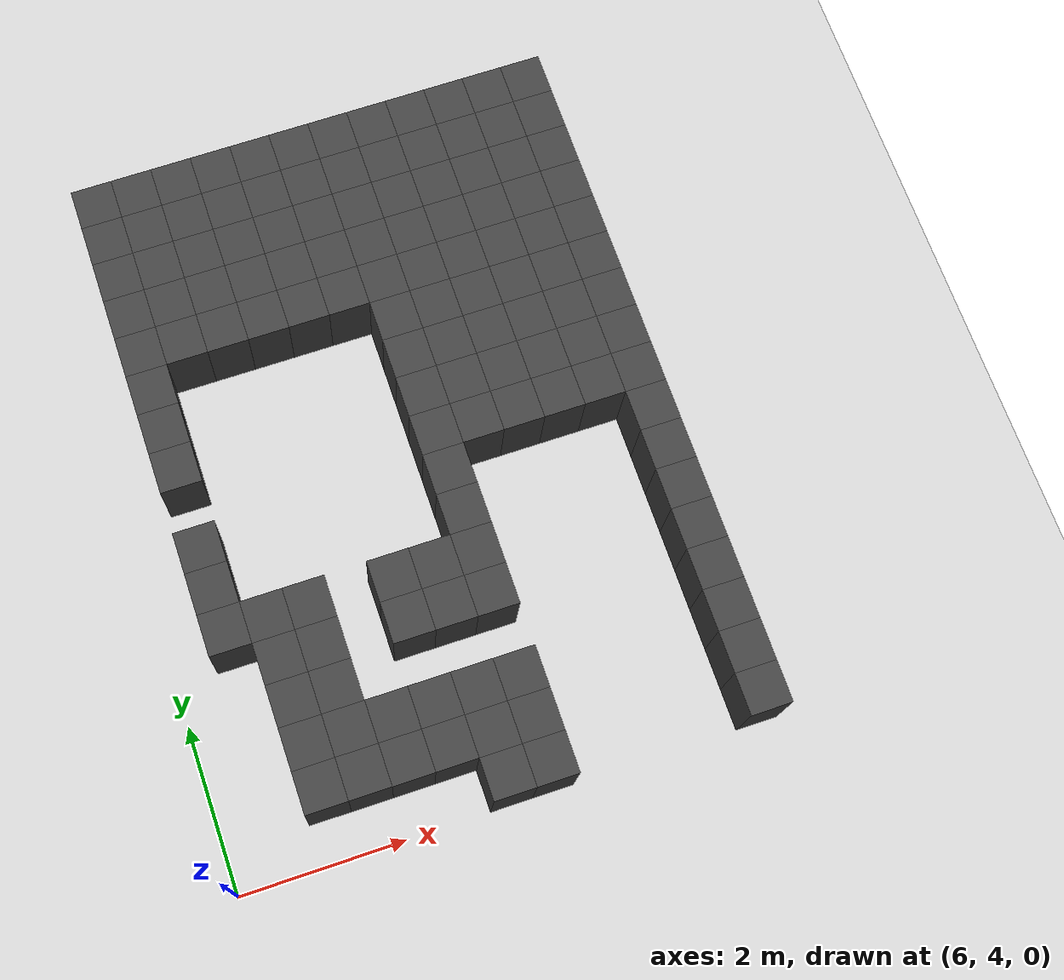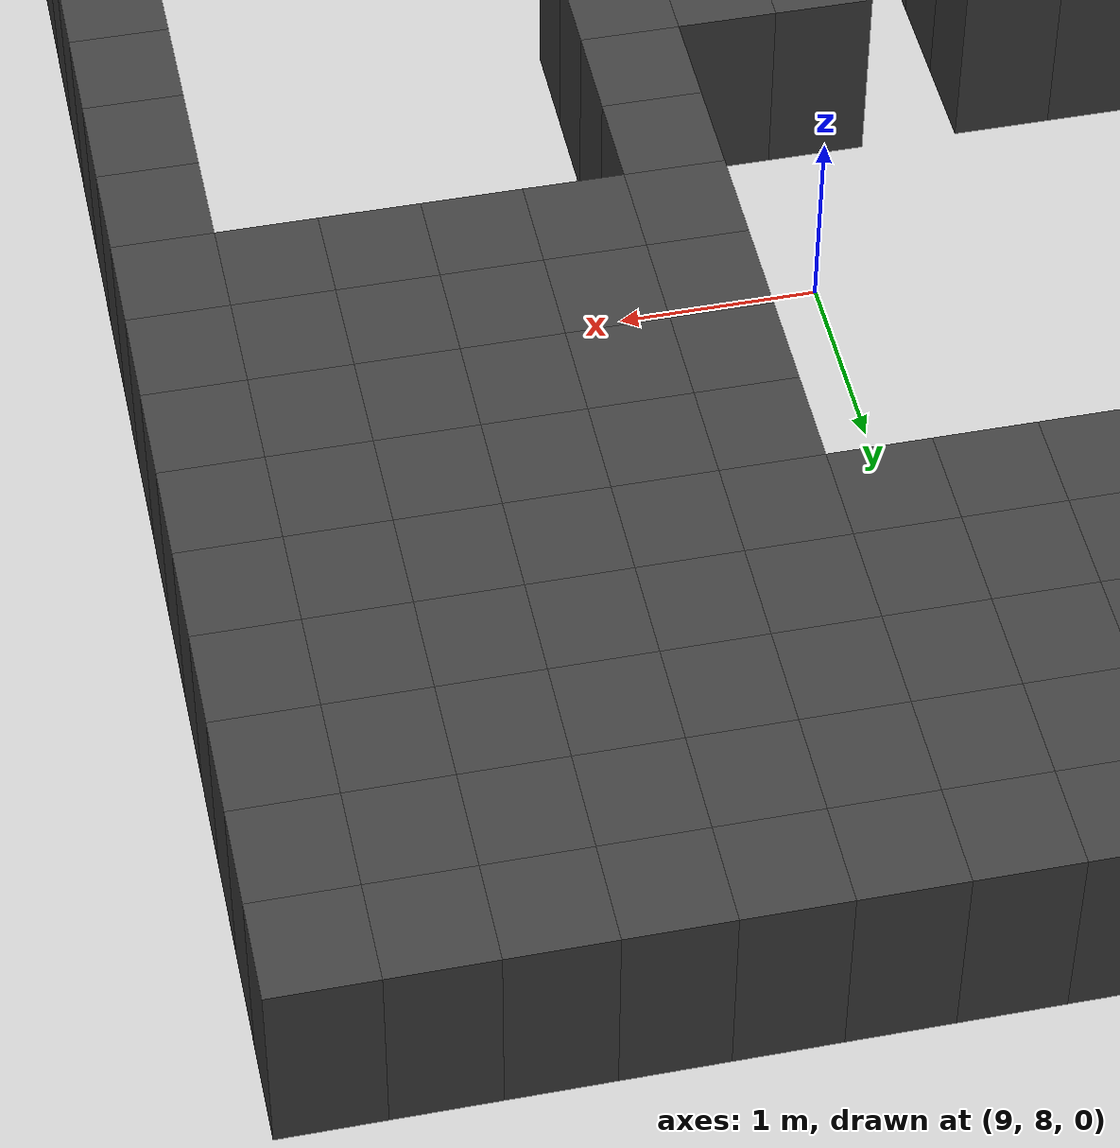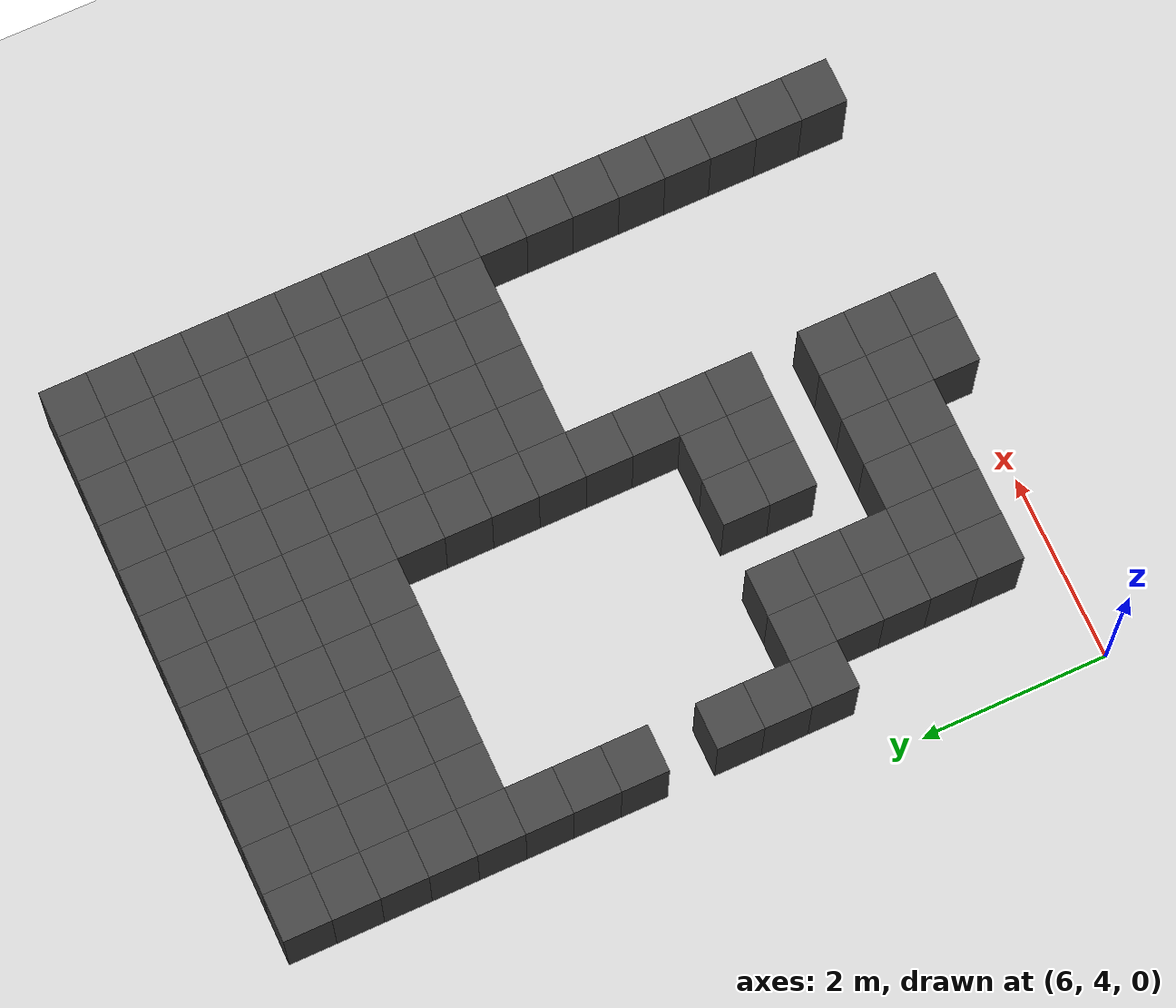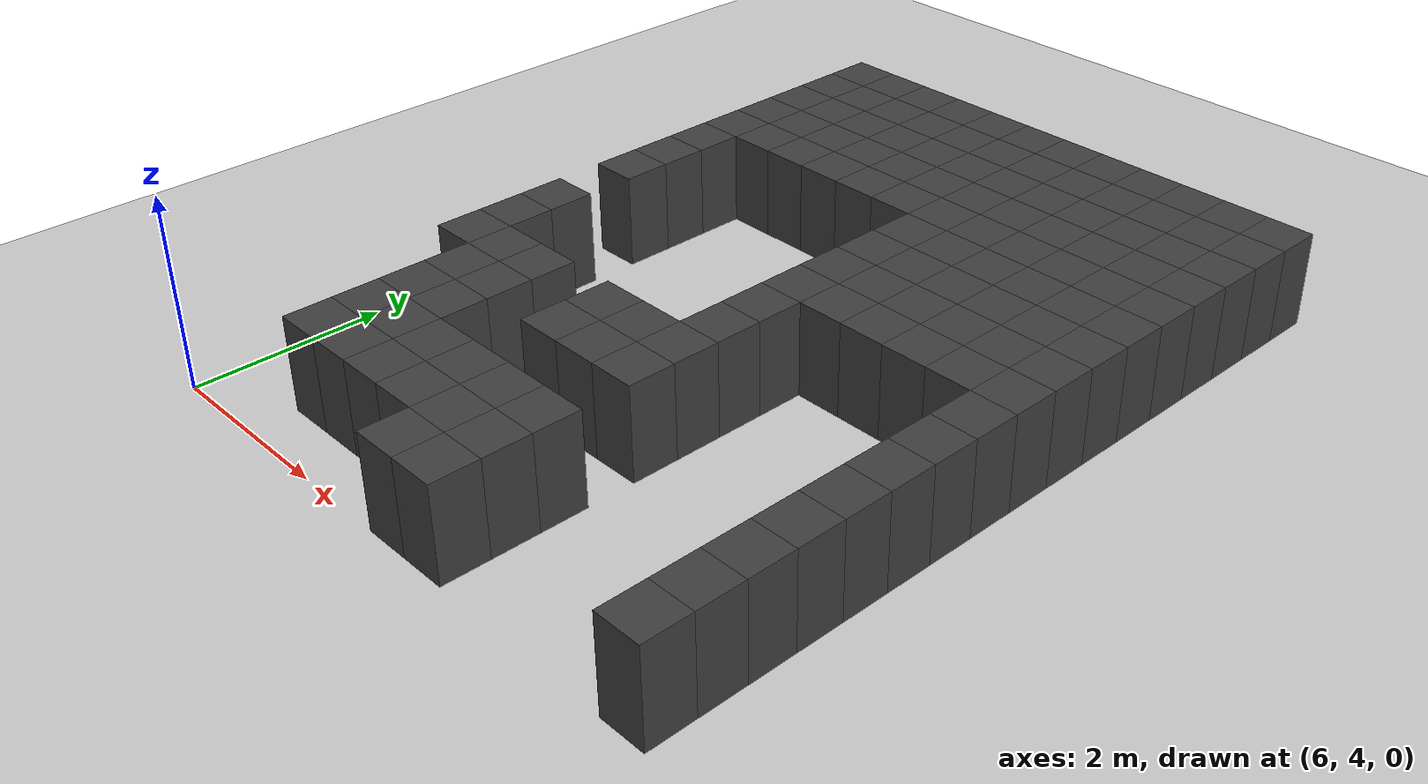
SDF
<sdf version="1.7">
 <world name="map_14190">
  <model name="ground_plane">
   <static>true</static>
   <link name="link">
    <collision name="collision">
     <geometry><plane><normal>0 0 1</normal><size>200 200</size></plane></geometry>
    </collision>
    <visual name="visual">
     <geometry><plane><normal>0 0 1</normal><size>200 200</size></plane></geometry>
     <material><ambient>0.8 0.8 0.8 1</ambient><diffuse>0.8 0.8 0.8 1</diffuse></material>
    </visual>
   </link>
  </model>
  <model name="maze_environment">
   <static>true</static>
   <link name="wall_38">
    <pose>6.750 12.250 0.500 0 0 0</pose>
    <collision name="col"><geometry><box><size>0.5 0.5 1.0</size></box></geometry></collision>
    <visual name="vis">
     <geometry><box><size>0.5 0.5 1.0</size></box></geometry>
     <material><ambient>0.15 0.15 0.15 1</ambient><diffuse>0.25 0.25 0.25 1</diffuse></material>
    </visual>
   </link>
   <link name="wall_39">
    <pose>7.250 12.250 0.500 0 0 0</pose>
    <collision name="col"><geometry><box><size>0.5 0.5 1.0</size></box></geometry></collision>
    <visual name="vis">
     <geometry><box><size>0.5 0.5 1.0</size></box></geometry>
     <material><ambient>0.15 0.15 0.15 1</ambient><diffuse>0.25 0.25 0.25 1</diffuse></material>
    </visual>
   </link>
   <link name="wall_40">
    <pose>7.750 12.250 0.500 0 0 0</pose>
    <collision name="col"><geometry><box><size>0.5 0.5 1.0</size></box></geometry></collision>
    <visual name="vis">
     <geometry><box><size>0.5 0.5 1.0</size></box></geometry>
     <material><ambient>0.15 0.15 0.15 1</ambient><diffuse>0.25 0.25 0.25 1</diffuse></material>
    </visual>
   </link>
   <link name="wall_41">
    <pose>8.250 12.250 0.500 0 0 0</pose>
    <collision name="col"><geometry><box><size>0.5 0.5 1.0</size></box></geometry></collision>
    <visual name="vis">
     <geometry><box><size>0.5 0.5 1.0</size></box></geometry>
     <material><ambient>0.15 0.15 0.15 1</ambient><diffuse>0.25 0.25 0.25 1</diffuse></material>
    </visual>
   </link>
   <link name="wall_42">
    <pose>8.750 12.250 0.500 0 0 0</pose>
    <collision name="col"><geometry><box><size>0.5 0.5 1.0</size></box></geometry></collision>
    <visual name="vis">
     <geometry><box><size>0.5 0.5 1.0</size></box></geometry>
     <material><ambient>0.15 0.15 0.15 1</ambient><diffuse>0.25 0.25 0.25 1</diffuse></material>
    </visual>
   </link>
   <link name="wall_43">
    <pose>9.250 12.250 0.500 0 0 0</pose>
    <collision name="col"><geometry><box><size>0.5 0.5 1.0</size></box></geometry></collision>
    <visual name="vis">
     <geometry><box><size>0.5 0.5 1.0</size></box></geometry>
     <material><ambient>0.15 0.15 0.15 1</ambient><diffuse>0.25 0.25 0.25 1</diffuse></material>
    </visual>
   </link>
   <link name="wall_44">
    <pose>9.750 12.250 0.500 0 0 0</pose>
    <collision name="col"><geometry><box><size>0.5 0.5 1.0</size></box></geometry></collision>
    <visual name="vis">
     <geometry><box><size>0.5 0.5 1.0</size></box></geometry>
     <material><ambient>0.15 0.15 0.15 1</ambient><diffuse>0.25 0.25 0.25 1</diffuse></material>
    </visual>
   </link>
   <link name="wall_45">
    <pose>10.250 12.250 0.500 0 0 0</pose>
    <collision name="col"><geometry><box><size>0.5 0.5 1.0</size></box></geometry></collision>
    <visual name="vis">
     <geometry><box><size>0.5 0.5 1.0</size></box></geometry>
     <material><ambient>0.15 0.15 0.15 1</ambient><diffuse>0.25 0.25 0.25 1</diffuse></material>
    </visual>
   </link>
   <link name="wall_46">
    <pose>10.750 12.250 0.500 0 0 0</pose>
    <collision name="col"><geometry><box><size>0.5 0.5 1.0</size></box></geometry></collision>
    <visual name="vis">
     <geometry><box><size>0.5 0.5 1.0</size></box></geometry>
     <material><ambient>0.15 0.15 0.15 1</ambient><diffuse>0.25 0.25 0.25 1</diffuse></material>
    </visual>
   </link>
   <link name="wall_47">
    <pose>11.250 12.250 0.500 0 0 0</pose>
    <collision name="col"><geometry><box><size>0.5 0.5 1.0</size></box></geometry></collision>
    <visual name="vis">
     <geometry><box><size>0.5 0.5 1.0</size></box></geometry>
     <material><ambient>0.15 0.15 0.15 1</ambient><diffuse>0.25 0.25 0.25 1</diffuse></material>
    </visual>
   </link>
   <link name="wall_48">
    <pose>11.750 12.250 0.500 0 0 0</pose>
    <collision name="col"><geometry><box><size>0.5 0.5 1.0</size></box></geometry></collision>
    <visual name="vis">
     <geometry><box><size>0.5 0.5 1.0</size></box></geometry>
     <material><ambient>0.15 0.15 0.15 1</ambient><diffuse>0.25 0.25 0.25 1</diffuse></material>
    </visual>
   </link>
   <link name="wall_49">
    <pose>12.250 12.250 0.500 0 0 0</pose>
    <collision name="col"><geometry><box><size>0.5 0.5 1.0</size></box></geometry></collision>
    <visual name="vis">
     <geometry><box><size>0.5 0.5 1.0</size></box></geometry>
     <material><ambient>0.15 0.15 0.15 1</ambient><diffuse>0.25 0.25 0.25 1</diffuse></material>
    </visual>
   </link>
   <link name="wall_85">
    <pose>6.750 11.750 0.500 0 0 0</pose>
    <collision name="col"><geometry><box><size>0.5 0.5 1.0</size></box></geometry></collision>
    <visual name="vis">
     <geometry><box><size>0.5 0.5 1.0</size></box></geometry>
     <material><ambient>0.15 0.15 0.15 1</ambient><diffuse>0.25 0.25 0.25 1</diffuse></material>
    </visual>
   </link>
   <link name="wall_86">
    <pose>7.250 11.750 0.500 0 0 0</pose>
    <collision name="col"><geometry><box><size>0.5 0.5 1.0</size></box></geometry></collision>
    <visual name="vis">
     <geometry><box><size>0.5 0.5 1.0</size></box></geometry>
     <material><ambient>0.15 0.15 0.15 1</ambient><diffuse>0.25 0.25 0.25 1</diffuse></material>
    </visual>
   </link>
   <link name="wall_87">
    <pose>7.750 11.750 0.500 0 0 0</pose>
    <collision name="col"><geometry><box><size>0.5 0.5 1.0</size></box></geometry></collision>
    <visual name="vis">
     <geometry><box><size>0.5 0.5 1.0</size></box></geometry>
     <material><ambient>0.15 0.15 0.15 1</ambient><diffuse>0.25 0.25 0.25 1</diffuse></material>
    </visual>
   </link>
   <link name="wall_88">
    <pose>8.250 11.750 0.500 0 0 0</pose>
    <collision name="col"><geometry><box><size>0.5 0.5 1.0</size></box></geometry></collision>
    <visual name="vis">
     <geometry><box><size>0.5 0.5 1.0</size></box></geometry>
     <material><ambient>0.15 0.15 0.15 1</ambient><diffuse>0.25 0.25 0.25 1</diffuse></material>
    </visual>
   </link>
   <link name="wall_89">
    <pose>8.750 11.750 0.500 0 0 0</pose>
    <collision name="col"><geometry><box><size>0.5 0.5 1.0</size></box></geometry></collision>
    <visual name="vis">
     <geometry><box><size>0.5 0.5 1.0</size></box></geometry>
     <material><ambient>0.15 0.15 0.15 1</ambient><diffuse>0.25 0.25 0.25 1</diffuse></material>
    </visual>
   </link>
   <link name="wall_90">
    <pose>9.250 11.750 0.500 0 0 0</pose>
    <collision name="col"><geometry><box><size>0.5 0.5 1.0</size></box></geometry></collision>
    <visual name="vis">
     <geometry><box><size>0.5 0.5 1.0</size></box></geometry>
     <material><ambient>0.15 0.15 0.15 1</ambient><diffuse>0.25 0.25 0.25 1</diffuse></material>
    </visual>
   </link>
   <link name="wall_91">
    <pose>9.750 11.750 0.500 0 0 0</pose>
    <collision name="col"><geometry><box><size>0.5 0.5 1.0</size></box></geometry></collision>
    <visual name="vis">
     <geometry><box><size>0.5 0.5 1.0</size></box></geometry>
     <material><ambient>0.15 0.15 0.15 1</ambient><diffuse>0.25 0.25 0.25 1</diffuse></material>
    </visual>
   </link>
   <link name="wall_92">
    <pose>10.250 11.750 0.500 0 0 0</pose>
    <collision name="col"><geometry><box><size>0.5 0.5 1.0</size></box></geometry></collision>
    <visual name="vis">
     <geometry><box><size>0.5 0.5 1.0</size></box></geometry>
     <material><ambient>0.15 0.15 0.15 1</ambient><diffuse>0.25 0.25 0.25 1</diffuse></material>
    </visual>
   </link>
   <link name="wall_93">
    <pose>10.750 11.750 0.500 0 0 0</pose>
    <collision name="col"><geometry><box><size>0.5 0.5 1.0</size></box></geometry></collision>
    <visual name="vis">
     <geometry><box><size>0.5 0.5 1.0</size></box></geometry>
     <material><ambient>0.15 0.15 0.15 1</ambient><diffuse>0.25 0.25 0.25 1</diffuse></material>
    </visual>
   </link>
   <link name="wall_94">
    <pose>11.250 11.750 0.500 0 0 0</pose>
    <collision name="col"><geometry><box><size>0.5 0.5 1.0</size></box></geometry></collision>
    <visual name="vis">
     <geometry><box><size>0.5 0.5 1.0</size></box></geometry>
     <material><ambient>0.15 0.15 0.15 1</ambient><diffuse>0.25 0.25 0.25 1</diffuse></material>
    </visual>
   </link>
   <link name="wall_95">
    <pose>11.750 11.750 0.500 0 0 0</pose>
    <collision name="col"><geometry><box><size>0.5 0.5 1.0</size></box></geometry></collision>
    <visual name="vis">
     <geometry><box><size>0.5 0.5 1.0</size></box></geometry>
     <material><ambient>0.15 0.15 0.15 1</ambient><diffuse>0.25 0.25 0.25 1</diffuse></material>
    </visual>
   </link>
   <link name="wall_96">
    <pose>12.250 11.750 0.500 0 0 0</pose>
    <collision name="col"><geometry><box><size>0.5 0.5 1.0</size></box></geometry></collision>
    <visual name="vis">
     <geometry><box><size>0.5 0.5 1.0</size></box></geometry>
     <material><ambient>0.15 0.15 0.15 1</ambient><diffuse>0.25 0.25 0.25 1</diffuse></material>
    </visual>
   </link>
   <link name="wall_128">
    <pose>6.750 11.250 0.500 0 0 0</pose>
    <collision name="col"><geometry><box><size>0.5 0.5 1.0</size></box></geometry></collision>
    <visual name="vis">
     <geometry><box><size>0.5 0.5 1.0</size></box></geometry>
     <material><ambient>0.15 0.15 0.15 1</ambient><diffuse>0.25 0.25 0.25 1</diffuse></material>
    </visual>
   </link>
   <link name="wall_129">
    <pose>7.250 11.250 0.500 0 0 0</pose>
    <collision name="col"><geometry><box><size>0.5 0.5 1.0</size></box></geometry></collision>
    <visual name="vis">
     <geometry><box><size>0.5 0.5 1.0</size></box></geometry>
     <material><ambient>0.15 0.15 0.15 1</ambient><diffuse>0.25 0.25 0.25 1</diffuse></material>
    </visual>
   </link>
   <link name="wall_130">
    <pose>7.750 11.250 0.500 0 0 0</pose>
    <collision name="col"><geometry><box><size>0.5 0.5 1.0</size></box></geometry></collision>
    <visual name="vis">
     <geometry><box><size>0.5 0.5 1.0</size></box></geometry>
     <material><ambient>0.15 0.15 0.15 1</ambient><diffuse>0.25 0.25 0.25 1</diffuse></material>
    </visual>
   </link>
   <link name="wall_131">
    <pose>8.250 11.250 0.500 0 0 0</pose>
    <collision name="col"><geometry><box><size>0.5 0.5 1.0</size></box></geometry></collision>
    <visual name="vis">
     <geometry><box><size>0.5 0.5 1.0</size></box></geometry>
     <material><ambient>0.15 0.15 0.15 1</ambient><diffuse>0.25 0.25 0.25 1</diffuse></material>
    </visual>
   </link>
   <link name="wall_132">
    <pose>8.750 11.250 0.500 0 0 0</pose>
    <collision name="col"><geometry><box><size>0.5 0.5 1.0</size></box></geometry></collision>
    <visual name="vis">
     <geometry><box><size>0.5 0.5 1.0</size></box></geometry>
     <material><ambient>0.15 0.15 0.15 1</ambient><diffuse>0.25 0.25 0.25 1</diffuse></material>
    </visual>
   </link>
   <link name="wall_133">
    <pose>9.250 11.250 0.500 0 0 0</pose>
    <collision name="col"><geometry><box><size>0.5 0.5 1.0</size></box></geometry></collision>
    <visual name="vis">
     <geometry><box><size>0.5 0.5 1.0</size></box></geometry>
     <material><ambient>0.15 0.15 0.15 1</ambient><diffuse>0.25 0.25 0.25 1</diffuse></material>
    </visual>
   </link>
   <link name="wall_134">
    <pose>9.750 11.250 0.500 0 0 0</pose>
    <collision name="col"><geometry><box><size>0.5 0.5 1.0</size></box></geometry></collision>
    <visual name="vis">
     <geometry><box><size>0.5 0.5 1.0</size></box></geometry>
     <material><ambient>0.15 0.15 0.15 1</ambient><diffuse>0.25 0.25 0.25 1</diffuse></material>
    </visual>
   </link>
   <link name="wall_135">
    <pose>10.250 11.250 0.500 0 0 0</pose>
    <collision name="col"><geometry><box><size>0.5 0.5 1.0</size></box></geometry></collision>
    <visual name="vis">
     <geometry><box><size>0.5 0.5 1.0</size></box></geometry>
     <material><ambient>0.15 0.15 0.15 1</ambient><diffuse>0.25 0.25 0.25 1</diffuse></material>
    </visual>
   </link>
   <link name="wall_136">
    <pose>10.750 11.250 0.500 0 0 0</pose>
    <collision name="col"><geometry><box><size>0.5 0.5 1.0</size></box></geometry></collision>
    <visual name="vis">
     <geometry><box><size>0.5 0.5 1.0</size></box></geometry>
     <material><ambient>0.15 0.15 0.15 1</ambient><diffuse>0.25 0.25 0.25 1</diffuse></material>
    </visual>
   </link>
   <link name="wall_137">
    <pose>11.250 11.250 0.500 0 0 0</pose>
    <collision name="col"><geometry><box><size>0.5 0.5 1.0</size></box></geometry></collision>
    <visual name="vis">
     <geometry><box><size>0.5 0.5 1.0</size></box></geometry>
     <material><ambient>0.15 0.15 0.15 1</ambient><diffuse>0.25 0.25 0.25 1</diffuse></material>
    </visual>
   </link>
   <link name="wall_138">
    <pose>11.750 11.250 0.500 0 0 0</pose>
    <collision name="col"><geometry><box><size>0.5 0.5 1.0</size></box></geometry></collision>
    <visual name="vis">
     <geometry><box><size>0.5 0.5 1.0</size></box></geometry>
     <material><ambient>0.15 0.15 0.15 1</ambient><diffuse>0.25 0.25 0.25 1</diffuse></material>
    </visual>
   </link>
   <link name="wall_139">
    <pose>12.250 11.250 0.500 0 0 0</pose>
    <collision name="col"><geometry><box><size>0.5 0.5 1.0</size></box></geometry></collision>
    <visual name="vis">
     <geometry><box><size>0.5 0.5 1.0</size></box></geometry>
     <material><ambient>0.15 0.15 0.15 1</ambient><diffuse>0.25 0.25 0.25 1</diffuse></material>
    </visual>
   </link>
   <link name="wall_171">
    <pose>6.750 10.750 0.500 0 0 0</pose>
    <collision name="col"><geometry><box><size>0.5 0.5 1.0</size></box></geometry></collision>
    <visual name="vis">
     <geometry><box><size>0.5 0.5 1.0</size></box></geometry>
     <material><ambient>0.15 0.15 0.15 1</ambient><diffuse>0.25 0.25 0.25 1</diffuse></material>
    </visual>
   </link>
   <link name="wall_172">
    <pose>7.250 10.750 0.500 0 0 0</pose>
    <collision name="col"><geometry><box><size>0.5 0.5 1.0</size></box></geometry></collision>
    <visual name="vis">
     <geometry><box><size>0.5 0.5 1.0</size></box></geometry>
     <material><ambient>0.15 0.15 0.15 1</ambient><diffuse>0.25 0.25 0.25 1</diffuse></material>
    </visual>
   </link>
   <link name="wall_173">
    <pose>7.750 10.750 0.500 0 0 0</pose>
    <collision name="col"><geometry><box><size>0.5 0.5 1.0</size></box></geometry></collision>
    <visual name="vis">
     <geometry><box><size>0.5 0.5 1.0</size></box></geometry>
     <material><ambient>0.15 0.15 0.15 1</ambient><diffuse>0.25 0.25 0.25 1</diffuse></material>
    </visual>
   </link>
   <link name="wall_174">
    <pose>8.250 10.750 0.500 0 0 0</pose>
    <collision name="col"><geometry><box><size>0.5 0.5 1.0</size></box></geometry></collision>
    <visual name="vis">
     <geometry><box><size>0.5 0.5 1.0</size></box></geometry>
     <material><ambient>0.15 0.15 0.15 1</ambient><diffuse>0.25 0.25 0.25 1</diffuse></material>
    </visual>
   </link>
   <link name="wall_175">
    <pose>8.750 10.750 0.500 0 0 0</pose>
    <collision name="col"><geometry><box><size>0.5 0.5 1.0</size></box></geometry></collision>
    <visual name="vis">
     <geometry><box><size>0.5 0.5 1.0</size></box></geometry>
     <material><ambient>0.15 0.15 0.15 1</ambient><diffuse>0.25 0.25 0.25 1</diffuse></material>
    </visual>
   </link>
   <link name="wall_176">
    <pose>9.250 10.750 0.500 0 0 0</pose>
    <collision name="col"><geometry><box><size>0.5 0.5 1.0</size></box></geometry></collision>
    <visual name="vis">
     <geometry><box><size>0.5 0.5 1.0</size></box></geometry>
     <material><ambient>0.15 0.15 0.15 1</ambient><diffuse>0.25 0.25 0.25 1</diffuse></material>
    </visual>
   </link>
   <link name="wall_177">
    <pose>9.750 10.750 0.500 0 0 0</pose>
    <collision name="col"><geometry><box><size>0.5 0.5 1.0</size></box></geometry></collision>
    <visual name="vis">
     <geometry><box><size>0.5 0.5 1.0</size></box></geometry>
     <material><ambient>0.15 0.15 0.15 1</ambient><diffuse>0.25 0.25 0.25 1</diffuse></material>
    </visual>
   </link>
   <link name="wall_178">
    <pose>10.250 10.750 0.500 0 0 0</pose>
    <collision name="col"><geometry><box><size>0.5 0.5 1.0</size></box></geometry></collision>
    <visual name="vis">
     <geometry><box><size>0.5 0.5 1.0</size></box></geometry>
     <material><ambient>0.15 0.15 0.15 1</ambient><diffuse>0.25 0.25 0.25 1</diffuse></material>
    </visual>
   </link>
   <link name="wall_179">
    <pose>10.750 10.750 0.500 0 0 0</pose>
    <collision name="col"><geometry><box><size>0.5 0.5 1.0</size></box></geometry></collision>
    <visual name="vis">
     <geometry><box><size>0.5 0.5 1.0</size></box></geometry>
     <material><ambient>0.15 0.15 0.15 1</ambient><diffuse>0.25 0.25 0.25 1</diffuse></material>
    </visual>
   </link>
   <link name="wall_180">
    <pose>11.250 10.750 0.500 0 0 0</pose>
    <collision name="col"><geometry><box><size>0.5 0.5 1.0</size></box></geometry></collision>
    <visual name="vis">
     <geometry><box><size>0.5 0.5 1.0</size></box></geometry>
     <material><ambient>0.15 0.15 0.15 1</ambient><diffuse>0.25 0.25 0.25 1</diffuse></material>
    </visual>
   </link>
   <link name="wall_181">
    <pose>11.750 10.750 0.500 0 0 0</pose>
    <collision name="col"><geometry><box><size>0.5 0.5 1.0</size></box></geometry></collision>
    <visual name="vis">
     <geometry><box><size>0.5 0.5 1.0</size></box></geometry>
     <material><ambient>0.15 0.15 0.15 1</ambient><diffuse>0.25 0.25 0.25 1</diffuse></material>
    </visual>
   </link>
   <link name="wall_182">
    <pose>12.250 10.750 0.500 0 0 0</pose>
    <collision name="col"><geometry><box><size>0.5 0.5 1.0</size></box></geometry></collision>
    <visual name="vis">
     <geometry><box><size>0.5 0.5 1.0</size></box></geometry>
     <material><ambient>0.15 0.15 0.15 1</ambient><diffuse>0.25 0.25 0.25 1</diffuse></material>
    </visual>
   </link>
   <link name="wall_216">
    <pose>6.750 10.250 0.500 0 0 0</pose>
    <collision name="col"><geometry><box><size>0.5 0.5 1.0</size></box></geometry></collision>
    <visual name="vis">
     <geometry><box><size>0.5 0.5 1.0</size></box></geometry>
     <material><ambient>0.15 0.15 0.15 1</ambient><diffuse>0.25 0.25 0.25 1</diffuse></material>
    </visual>
   </link>
   <link name="wall_217">
    <pose>7.250 10.250 0.500 0 0 0</pose>
    <collision name="col"><geometry><box><size>0.5 0.5 1.0</size></box></geometry></collision>
    <visual name="vis">
     <geometry><box><size>0.5 0.5 1.0</size></box></geometry>
     <material><ambient>0.15 0.15 0.15 1</ambient><diffuse>0.25 0.25 0.25 1</diffuse></material>
    </visual>
   </link>
   <link name="wall_218">
    <pose>7.750 10.250 0.500 0 0 0</pose>
    <collision name="col"><geometry><box><size>0.5 0.5 1.0</size></box></geometry></collision>
    <visual name="vis">
     <geometry><box><size>0.5 0.5 1.0</size></box></geometry>
     <material><ambient>0.15 0.15 0.15 1</ambient><diffuse>0.25 0.25 0.25 1</diffuse></material>
    </visual>
   </link>
   <link name="wall_219">
    <pose>8.250 10.250 0.500 0 0 0</pose>
    <collision name="col"><geometry><box><size>0.5 0.5 1.0</size></box></geometry></collision>
    <visual name="vis">
     <geometry><box><size>0.5 0.5 1.0</size></box></geometry>
     <material><ambient>0.15 0.15 0.15 1</ambient><diffuse>0.25 0.25 0.25 1</diffuse></material>
    </visual>
   </link>
   <link name="wall_220">
    <pose>8.750 10.250 0.500 0 0 0</pose>
    <collision name="col"><geometry><box><size>0.5 0.5 1.0</size></box></geometry></collision>
    <visual name="vis">
     <geometry><box><size>0.5 0.5 1.0</size></box></geometry>
     <material><ambient>0.15 0.15 0.15 1</ambient><diffuse>0.25 0.25 0.25 1</diffuse></material>
    </visual>
   </link>
   <link name="wall_221">
    <pose>9.250 10.250 0.500 0 0 0</pose>
    <collision name="col"><geometry><box><size>0.5 0.5 1.0</size></box></geometry></collision>
    <visual name="vis">
     <geometry><box><size>0.5 0.5 1.0</size></box></geometry>
     <material><ambient>0.15 0.15 0.15 1</ambient><diffuse>0.25 0.25 0.25 1</diffuse></material>
    </visual>
   </link>
   <link name="wall_222">
    <pose>9.750 10.250 0.500 0 0 0</pose>
    <collision name="col"><geometry><box><size>0.5 0.5 1.0</size></box></geometry></collision>
    <visual name="vis">
     <geometry><box><size>0.5 0.5 1.0</size></box></geometry>
     <material><ambient>0.15 0.15 0.15 1</ambient><diffuse>0.25 0.25 0.25 1</diffuse></material>
    </visual>
   </link>
   <link name="wall_223">
    <pose>10.250 10.250 0.500 0 0 0</pose>
    <collision name="col"><geometry><box><size>0.5 0.5 1.0</size></box></geometry></collision>
    <visual name="vis">
     <geometry><box><size>0.5 0.5 1.0</size></box></geometry>
     <material><ambient>0.15 0.15 0.15 1</ambient><diffuse>0.25 0.25 0.25 1</diffuse></material>
    </visual>
   </link>
   <link name="wall_224">
    <pose>10.750 10.250 0.500 0 0 0</pose>
    <collision name="col"><geometry><box><size>0.5 0.5 1.0</size></box></geometry></collision>
    <visual name="vis">
     <geometry><box><size>0.5 0.5 1.0</size></box></geometry>
     <material><ambient>0.15 0.15 0.15 1</ambient><diffuse>0.25 0.25 0.25 1</diffuse></material>
    </visual>
   </link>
   <link name="wall_225">
    <pose>11.250 10.250 0.500 0 0 0</pose>
    <collision name="col"><geometry><box><size>0.5 0.5 1.0</size></box></geometry></collision>
    <visual name="vis">
     <geometry><box><size>0.5 0.5 1.0</size></box></geometry>
     <material><ambient>0.15 0.15 0.15 1</ambient><diffuse>0.25 0.25 0.25 1</diffuse></material>
    </visual>
   </link>
   <link name="wall_226">
    <pose>11.750 10.250 0.500 0 0 0</pose>
    <collision name="col"><geometry><box><size>0.5 0.5 1.0</size></box></geometry></collision>
    <visual name="vis">
     <geometry><box><size>0.5 0.5 1.0</size></box></geometry>
     <material><ambient>0.15 0.15 0.15 1</ambient><diffuse>0.25 0.25 0.25 1</diffuse></material>
    </visual>
   </link>
   <link name="wall_227">
    <pose>12.250 10.250 0.500 0 0 0</pose>
    <collision name="col"><geometry><box><size>0.5 0.5 1.0</size></box></geometry></collision>
    <visual name="vis">
     <geometry><box><size>0.5 0.5 1.0</size></box></geometry>
     <material><ambient>0.15 0.15 0.15 1</ambient><diffuse>0.25 0.25 0.25 1</diffuse></material>
    </visual>
   </link>
   <link name="wall_250">
    <pose>6.750 9.750 0.500 0 0 0</pose>
    <collision name="col"><geometry><box><size>0.5 0.5 1.0</size></box></geometry></collision>
    <visual name="vis">
     <geometry><box><size>0.5 0.5 1.0</size></box></geometry>
     <material><ambient>0.15 0.15 0.15 1</ambient><diffuse>0.25 0.25 0.25 1</diffuse></material>
    </visual>
   </link>
   <link name="wall_251">
    <pose>9.750 9.750 0.500 0 0 0</pose>
    <collision name="col"><geometry><box><size>0.5 0.5 1.0</size></box></geometry></collision>
    <visual name="vis">
     <geometry><box><size>0.5 0.5 1.0</size></box></geometry>
     <material><ambient>0.15 0.15 0.15 1</ambient><diffuse>0.25 0.25 0.25 1</diffuse></material>
    </visual>
   </link>
   <link name="wall_252">
    <pose>10.250 9.750 0.500 0 0 0</pose>
    <collision name="col"><geometry><box><size>0.5 0.5 1.0</size></box></geometry></collision>
    <visual name="vis">
     <geometry><box><size>0.5 0.5 1.0</size></box></geometry>
     <material><ambient>0.15 0.15 0.15 1</ambient><diffuse>0.25 0.25 0.25 1</diffuse></material>
    </visual>
   </link>
   <link name="wall_253">
    <pose>10.750 9.750 0.500 0 0 0</pose>
    <collision name="col"><geometry><box><size>0.5 0.5 1.0</size></box></geometry></collision>
    <visual name="vis">
     <geometry><box><size>0.5 0.5 1.0</size></box></geometry>
     <material><ambient>0.15 0.15 0.15 1</ambient><diffuse>0.25 0.25 0.25 1</diffuse></material>
    </visual>
   </link>
   <link name="wall_254">
    <pose>11.250 9.750 0.500 0 0 0</pose>
    <collision name="col"><geometry><box><size>0.5 0.5 1.0</size></box></geometry></collision>
    <visual name="vis">
     <geometry><box><size>0.5 0.5 1.0</size></box></geometry>
     <material><ambient>0.15 0.15 0.15 1</ambient><diffuse>0.25 0.25 0.25 1</diffuse></material>
    </visual>
   </link>
   <link name="wall_255">
    <pose>11.750 9.750 0.500 0 0 0</pose>
    <collision name="col"><geometry><box><size>0.5 0.5 1.0</size></box></geometry></collision>
    <visual name="vis">
     <geometry><box><size>0.5 0.5 1.0</size></box></geometry>
     <material><ambient>0.15 0.15 0.15 1</ambient><diffuse>0.25 0.25 0.25 1</diffuse></material>
    </visual>
   </link>
   <link name="wall_256">
    <pose>12.250 9.750 0.500 0 0 0</pose>
    <collision name="col"><geometry><box><size>0.5 0.5 1.0</size></box></geometry></collision>
    <visual name="vis">
     <geometry><box><size>0.5 0.5 1.0</size></box></geometry>
     <material><ambient>0.15 0.15 0.15 1</ambient><diffuse>0.25 0.25 0.25 1</diffuse></material>
    </visual>
   </link>
   <link name="wall_290">
    <pose>6.750 9.250 0.500 0 0 0</pose>
    <collision name="col"><geometry><box><size>0.5 0.5 1.0</size></box></geometry></collision>
    <visual name="vis">
     <geometry><box><size>0.5 0.5 1.0</size></box></geometry>
     <material><ambient>0.15 0.15 0.15 1</ambient><diffuse>0.25 0.25 0.25 1</diffuse></material>
    </visual>
   </link>
   <link name="wall_291">
    <pose>9.750 9.250 0.500 0 0 0</pose>
    <collision name="col"><geometry><box><size>0.5 0.5 1.0</size></box></geometry></collision>
    <visual name="vis">
     <geometry><box><size>0.5 0.5 1.0</size></box></geometry>
     <material><ambient>0.15 0.15 0.15 1</ambient><diffuse>0.25 0.25 0.25 1</diffuse></material>
    </visual>
   </link>
   <link name="wall_292">
    <pose>10.250 9.250 0.500 0 0 0</pose>
    <collision name="col"><geometry><box><size>0.5 0.5 1.0</size></box></geometry></collision>
    <visual name="vis">
     <geometry><box><size>0.5 0.5 1.0</size></box></geometry>
     <material><ambient>0.15 0.15 0.15 1</ambient><diffuse>0.25 0.25 0.25 1</diffuse></material>
    </visual>
   </link>
   <link name="wall_293">
    <pose>10.750 9.250 0.500 0 0 0</pose>
    <collision name="col"><geometry><box><size>0.5 0.5 1.0</size></box></geometry></collision>
    <visual name="vis">
     <geometry><box><size>0.5 0.5 1.0</size></box></geometry>
     <material><ambient>0.15 0.15 0.15 1</ambient><diffuse>0.25 0.25 0.25 1</diffuse></material>
    </visual>
   </link>
   <link name="wall_294">
    <pose>11.250 9.250 0.500 0 0 0</pose>
    <collision name="col"><geometry><box><size>0.5 0.5 1.0</size></box></geometry></collision>
    <visual name="vis">
     <geometry><box><size>0.5 0.5 1.0</size></box></geometry>
     <material><ambient>0.15 0.15 0.15 1</ambient><diffuse>0.25 0.25 0.25 1</diffuse></material>
    </visual>
   </link>
   <link name="wall_295">
    <pose>11.750 9.250 0.500 0 0 0</pose>
    <collision name="col"><geometry><box><size>0.5 0.5 1.0</size></box></geometry></collision>
    <visual name="vis">
     <geometry><box><size>0.5 0.5 1.0</size></box></geometry>
     <material><ambient>0.15 0.15 0.15 1</ambient><diffuse>0.25 0.25 0.25 1</diffuse></material>
    </visual>
   </link>
   <link name="wall_296">
    <pose>12.250 9.250 0.500 0 0 0</pose>
    <collision name="col"><geometry><box><size>0.5 0.5 1.0</size></box></geometry></collision>
    <visual name="vis">
     <geometry><box><size>0.5 0.5 1.0</size></box></geometry>
     <material><ambient>0.15 0.15 0.15 1</ambient><diffuse>0.25 0.25 0.25 1</diffuse></material>
    </visual>
   </link>
   <link name="wall_324">
    <pose>6.750 8.750 0.500 0 0 0</pose>
    <collision name="col"><geometry><box><size>0.5 0.5 1.0</size></box></geometry></collision>
    <visual name="vis">
     <geometry><box><size>0.5 0.5 1.0</size></box></geometry>
     <material><ambient>0.15 0.15 0.15 1</ambient><diffuse>0.25 0.25 0.25 1</diffuse></material>
    </visual>
   </link>
   <link name="wall_325">
    <pose>9.750 8.750 0.500 0 0 0</pose>
    <collision name="col"><geometry><box><size>0.5 0.5 1.0</size></box></geometry></collision>
    <visual name="vis">
     <geometry><box><size>0.5 0.5 1.0</size></box></geometry>
     <material><ambient>0.15 0.15 0.15 1</ambient><diffuse>0.25 0.25 0.25 1</diffuse></material>
    </visual>
   </link>
   <link name="wall_326">
    <pose>10.250 8.750 0.500 0 0 0</pose>
    <collision name="col"><geometry><box><size>0.5 0.5 1.0</size></box></geometry></collision>
    <visual name="vis">
     <geometry><box><size>0.5 0.5 1.0</size></box></geometry>
     <material><ambient>0.15 0.15 0.15 1</ambient><diffuse>0.25 0.25 0.25 1</diffuse></material>
    </visual>
   </link>
   <link name="wall_327">
    <pose>10.750 8.750 0.500 0 0 0</pose>
    <collision name="col"><geometry><box><size>0.5 0.5 1.0</size></box></geometry></collision>
    <visual name="vis">
     <geometry><box><size>0.5 0.5 1.0</size></box></geometry>
     <material><ambient>0.15 0.15 0.15 1</ambient><diffuse>0.25 0.25 0.25 1</diffuse></material>
    </visual>
   </link>
   <link name="wall_328">
    <pose>11.250 8.750 0.500 0 0 0</pose>
    <collision name="col"><geometry><box><size>0.5 0.5 1.0</size></box></geometry></collision>
    <visual name="vis">
     <geometry><box><size>0.5 0.5 1.0</size></box></geometry>
     <material><ambient>0.15 0.15 0.15 1</ambient><diffuse>0.25 0.25 0.25 1</diffuse></material>
    </visual>
   </link>
   <link name="wall_329">
    <pose>11.750 8.750 0.500 0 0 0</pose>
    <collision name="col"><geometry><box><size>0.5 0.5 1.0</size></box></geometry></collision>
    <visual name="vis">
     <geometry><box><size>0.5 0.5 1.0</size></box></geometry>
     <material><ambient>0.15 0.15 0.15 1</ambient><diffuse>0.25 0.25 0.25 1</diffuse></material>
    </visual>
   </link>
   <link name="wall_330">
    <pose>12.250 8.750 0.500 0 0 0</pose>
    <collision name="col"><geometry><box><size>0.5 0.5 1.0</size></box></geometry></collision>
    <visual name="vis">
     <geometry><box><size>0.5 0.5 1.0</size></box></geometry>
     <material><ambient>0.15 0.15 0.15 1</ambient><diffuse>0.25 0.25 0.25 1</diffuse></material>
    </visual>
   </link>
   <link name="wall_356">
    <pose>9.750 8.250 0.500 0 0 0</pose>
    <collision name="col"><geometry><box><size>0.5 0.5 1.0</size></box></geometry></collision>
    <visual name="vis">
     <geometry><box><size>0.5 0.5 1.0</size></box></geometry>
     <material><ambient>0.15 0.15 0.15 1</ambient><diffuse>0.25 0.25 0.25 1</diffuse></material>
    </visual>
   </link>
   <link name="wall_357">
    <pose>10.250 8.250 0.500 0 0 0</pose>
    <collision name="col"><geometry><box><size>0.5 0.5 1.0</size></box></geometry></collision>
    <visual name="vis">
     <geometry><box><size>0.5 0.5 1.0</size></box></geometry>
     <material><ambient>0.15 0.15 0.15 1</ambient><diffuse>0.25 0.25 0.25 1</diffuse></material>
    </visual>
   </link>
   <link name="wall_358">
    <pose>10.750 8.250 0.500 0 0 0</pose>
    <collision name="col"><geometry><box><size>0.5 0.5 1.0</size></box></geometry></collision>
    <visual name="vis">
     <geometry><box><size>0.5 0.5 1.0</size></box></geometry>
     <material><ambient>0.15 0.15 0.15 1</ambient><diffuse>0.25 0.25 0.25 1</diffuse></material>
    </visual>
   </link>
   <link name="wall_359">
    <pose>11.250 8.250 0.500 0 0 0</pose>
    <collision name="col"><geometry><box><size>0.5 0.5 1.0</size></box></geometry></collision>
    <visual name="vis">
     <geometry><box><size>0.5 0.5 1.0</size></box></geometry>
     <material><ambient>0.15 0.15 0.15 1</ambient><diffuse>0.25 0.25 0.25 1</diffuse></material>
    </visual>
   </link>
   <link name="wall_360">
    <pose>11.750 8.250 0.500 0 0 0</pose>
    <collision name="col"><geometry><box><size>0.5 0.5 1.0</size></box></geometry></collision>
    <visual name="vis">
     <geometry><box><size>0.5 0.5 1.0</size></box></geometry>
     <material><ambient>0.15 0.15 0.15 1</ambient><diffuse>0.25 0.25 0.25 1</diffuse></material>
    </visual>
   </link>
   <link name="wall_361">
    <pose>12.250 8.250 0.500 0 0 0</pose>
    <collision name="col"><geometry><box><size>0.5 0.5 1.0</size></box></geometry></collision>
    <visual name="vis">
     <geometry><box><size>0.5 0.5 1.0</size></box></geometry>
     <material><ambient>0.15 0.15 0.15 1</ambient><diffuse>0.25 0.25 0.25 1</diffuse></material>
    </visual>
   </link>
   <link name="wall_392">
    <pose>6.750 7.750 0.500 0 0 0</pose>
    <collision name="col"><geometry><box><size>0.5 0.5 1.0</size></box></geometry></collision>
    <visual name="vis">
     <geometry><box><size>0.5 0.5 1.0</size></box></geometry>
     <material><ambient>0.15 0.15 0.15 1</ambient><diffuse>0.25 0.25 0.25 1</diffuse></material>
    </visual>
   </link>
   <link name="wall_393">
    <pose>9.750 7.750 0.500 0 0 0</pose>
    <collision name="col"><geometry><box><size>0.5 0.5 1.0</size></box></geometry></collision>
    <visual name="vis">
     <geometry><box><size>0.5 0.5 1.0</size></box></geometry>
     <material><ambient>0.15 0.15 0.15 1</ambient><diffuse>0.25 0.25 0.25 1</diffuse></material>
    </visual>
   </link>
   <link name="wall_394">
    <pose>12.250 7.750 0.500 0 0 0</pose>
    <collision name="col"><geometry><box><size>0.5 0.5 1.0</size></box></geometry></collision>
    <visual name="vis">
     <geometry><box><size>0.5 0.5 1.0</size></box></geometry>
     <material><ambient>0.15 0.15 0.15 1</ambient><diffuse>0.25 0.25 0.25 1</diffuse></material>
    </visual>
   </link>
   <link name="wall_421">
    <pose>6.750 7.250 0.500 0 0 0</pose>
    <collision name="col"><geometry><box><size>0.5 0.5 1.0</size></box></geometry></collision>
    <visual name="vis">
     <geometry><box><size>0.5 0.5 1.0</size></box></geometry>
     <material><ambient>0.15 0.15 0.15 1</ambient><diffuse>0.25 0.25 0.25 1</diffuse></material>
    </visual>
   </link>
   <link name="wall_422">
    <pose>9.750 7.250 0.500 0 0 0</pose>
    <collision name="col"><geometry><box><size>0.5 0.5 1.0</size></box></geometry></collision>
    <visual name="vis">
     <geometry><box><size>0.5 0.5 1.0</size></box></geometry>
     <material><ambient>0.15 0.15 0.15 1</ambient><diffuse>0.25 0.25 0.25 1</diffuse></material>
    </visual>
   </link>
   <link name="wall_423">
    <pose>12.250 7.250 0.500 0 0 0</pose>
    <collision name="col"><geometry><box><size>0.5 0.5 1.0</size></box></geometry></collision>
    <visual name="vis">
     <geometry><box><size>0.5 0.5 1.0</size></box></geometry>
     <material><ambient>0.15 0.15 0.15 1</ambient><diffuse>0.25 0.25 0.25 1</diffuse></material>
    </visual>
   </link>
   <link name="wall_445">
    <pose>6.750 6.750 0.500 0 0 0</pose>
    <collision name="col"><geometry><box><size>0.5 0.5 1.0</size></box></geometry></collision>
    <visual name="vis">
     <geometry><box><size>0.5 0.5 1.0</size></box></geometry>
     <material><ambient>0.15 0.15 0.15 1</ambient><diffuse>0.25 0.25 0.25 1</diffuse></material>
    </visual>
   </link>
   <link name="wall_446">
    <pose>7.250 6.750 0.500 0 0 0</pose>
    <collision name="col"><geometry><box><size>0.5 0.5 1.0</size></box></geometry></collision>
    <visual name="vis">
     <geometry><box><size>0.5 0.5 1.0</size></box></geometry>
     <material><ambient>0.15 0.15 0.15 1</ambient><diffuse>0.25 0.25 0.25 1</diffuse></material>
    </visual>
   </link>
   <link name="wall_447">
    <pose>7.750 6.750 0.500 0 0 0</pose>
    <collision name="col"><geometry><box><size>0.5 0.5 1.0</size></box></geometry></collision>
    <visual name="vis">
     <geometry><box><size>0.5 0.5 1.0</size></box></geometry>
     <material><ambient>0.15 0.15 0.15 1</ambient><diffuse>0.25 0.25 0.25 1</diffuse></material>
    </visual>
   </link>
   <link name="wall_448">
    <pose>8.750 6.750 0.500 0 0 0</pose>
    <collision name="col"><geometry><box><size>0.5 0.5 1.0</size></box></geometry></collision>
    <visual name="vis">
     <geometry><box><size>0.5 0.5 1.0</size></box></geometry>
     <material><ambient>0.15 0.15 0.15 1</ambient><diffuse>0.25 0.25 0.25 1</diffuse></material>
    </visual>
   </link>
   <link name="wall_449">
    <pose>9.250 6.750 0.500 0 0 0</pose>
    <collision name="col"><geometry><box><size>0.5 0.5 1.0</size></box></geometry></collision>
    <visual name="vis">
     <geometry><box><size>0.5 0.5 1.0</size></box></geometry>
     <material><ambient>0.15 0.15 0.15 1</ambient><diffuse>0.25 0.25 0.25 1</diffuse></material>
    </visual>
   </link>
   <link name="wall_450">
    <pose>9.750 6.750 0.500 0 0 0</pose>
    <collision name="col"><geometry><box><size>0.5 0.5 1.0</size></box></geometry></collision>
    <visual name="vis">
     <geometry><box><size>0.5 0.5 1.0</size></box></geometry>
     <material><ambient>0.15 0.15 0.15 1</ambient><diffuse>0.25 0.25 0.25 1</diffuse></material>
    </visual>
   </link>
   <link name="wall_451">
    <pose>12.250 6.750 0.500 0 0 0</pose>
    <collision name="col"><geometry><box><size>0.5 0.5 1.0</size></box></geometry></collision>
    <visual name="vis">
     <geometry><box><size>0.5 0.5 1.0</size></box></geometry>
     <material><ambient>0.15 0.15 0.15 1</ambient><diffuse>0.25 0.25 0.25 1</diffuse></material>
    </visual>
   </link>
   <link name="wall_468">
    <pose>7.250 6.250 0.500 0 0 0</pose>
    <collision name="col"><geometry><box><size>0.5 0.5 1.0</size></box></geometry></collision>
    <visual name="vis">
     <geometry><box><size>0.5 0.5 1.0</size></box></geometry>
     <material><ambient>0.15 0.15 0.15 1</ambient><diffuse>0.25 0.25 0.25 1</diffuse></material>
    </visual>
   </link>
   <link name="wall_469">
    <pose>7.750 6.250 0.500 0 0 0</pose>
    <collision name="col"><geometry><box><size>0.5 0.5 1.0</size></box></geometry></collision>
    <visual name="vis">
     <geometry><box><size>0.5 0.5 1.0</size></box></geometry>
     <material><ambient>0.15 0.15 0.15 1</ambient><diffuse>0.25 0.25 0.25 1</diffuse></material>
    </visual>
   </link>
   <link name="wall_470">
    <pose>8.750 6.250 0.500 0 0 0</pose>
    <collision name="col"><geometry><box><size>0.5 0.5 1.0</size></box></geometry></collision>
    <visual name="vis">
     <geometry><box><size>0.5 0.5 1.0</size></box></geometry>
     <material><ambient>0.15 0.15 0.15 1</ambient><diffuse>0.25 0.25 0.25 1</diffuse></material>
    </visual>
   </link>
   <link name="wall_471">
    <pose>9.250 6.250 0.500 0 0 0</pose>
    <collision name="col"><geometry><box><size>0.5 0.5 1.0</size></box></geometry></collision>
    <visual name="vis">
     <geometry><box><size>0.5 0.5 1.0</size></box></geometry>
     <material><ambient>0.15 0.15 0.15 1</ambient><diffuse>0.25 0.25 0.25 1</diffuse></material>
    </visual>
   </link>
   <link name="wall_472">
    <pose>9.750 6.250 0.500 0 0 0</pose>
    <collision name="col"><geometry><box><size>0.5 0.5 1.0</size></box></geometry></collision>
    <visual name="vis">
     <geometry><box><size>0.5 0.5 1.0</size></box></geometry>
     <material><ambient>0.15 0.15 0.15 1</ambient><diffuse>0.25 0.25 0.25 1</diffuse></material>
    </visual>
   </link>
   <link name="wall_473">
    <pose>12.250 6.250 0.500 0 0 0</pose>
    <collision name="col"><geometry><box><size>0.5 0.5 1.0</size></box></geometry></collision>
    <visual name="vis">
     <geometry><box><size>0.5 0.5 1.0</size></box></geometry>
     <material><ambient>0.15 0.15 0.15 1</ambient><diffuse>0.25 0.25 0.25 1</diffuse></material>
    </visual>
   </link>
   <link name="wall_495">
    <pose>7.250 5.750 0.500 0 0 0</pose>
    <collision name="col"><geometry><box><size>0.5 0.5 1.0</size></box></geometry></collision>
    <visual name="vis">
     <geometry><box><size>0.5 0.5 1.0</size></box></geometry>
     <material><ambient>0.15 0.15 0.15 1</ambient><diffuse>0.25 0.25 0.25 1</diffuse></material>
    </visual>
   </link>
   <link name="wall_496">
    <pose>7.750 5.750 0.500 0 0 0</pose>
    <collision name="col"><geometry><box><size>0.5 0.5 1.0</size></box></geometry></collision>
    <visual name="vis">
     <geometry><box><size>0.5 0.5 1.0</size></box></geometry>
     <material><ambient>0.15 0.15 0.15 1</ambient><diffuse>0.25 0.25 0.25 1</diffuse></material>
    </visual>
   </link>
   <link name="wall_497">
    <pose>12.250 5.750 0.500 0 0 0</pose>
    <collision name="col"><geometry><box><size>0.5 0.5 1.0</size></box></geometry></collision>
    <visual name="vis">
     <geometry><box><size>0.5 0.5 1.0</size></box></geometry>
     <material><ambient>0.15 0.15 0.15 1</ambient><diffuse>0.25 0.25 0.25 1</diffuse></material>
    </visual>
   </link>
   <link name="wall_519">
    <pose>7.250 5.250 0.500 0 0 0</pose>
    <collision name="col"><geometry><box><size>0.5 0.5 1.0</size></box></geometry></collision>
    <visual name="vis">
     <geometry><box><size>0.5 0.5 1.0</size></box></geometry>
     <material><ambient>0.15 0.15 0.15 1</ambient><diffuse>0.25 0.25 0.25 1</diffuse></material>
    </visual>
   </link>
   <link name="wall_520">
    <pose>7.750 5.250 0.500 0 0 0</pose>
    <collision name="col"><geometry><box><size>0.5 0.5 1.0</size></box></geometry></collision>
    <visual name="vis">
     <geometry><box><size>0.5 0.5 1.0</size></box></geometry>
     <material><ambient>0.15 0.15 0.15 1</ambient><diffuse>0.25 0.25 0.25 1</diffuse></material>
    </visual>
   </link>
   <link name="wall_521">
    <pose>8.250 5.250 0.500 0 0 0</pose>
    <collision name="col"><geometry><box><size>0.5 0.5 1.0</size></box></geometry></collision>
    <visual name="vis">
     <geometry><box><size>0.5 0.5 1.0</size></box></geometry>
     <material><ambient>0.15 0.15 0.15 1</ambient><diffuse>0.25 0.25 0.25 1</diffuse></material>
    </visual>
   </link>
   <link name="wall_522">
    <pose>8.750 5.250 0.500 0 0 0</pose>
    <collision name="col"><geometry><box><size>0.5 0.5 1.0</size></box></geometry></collision>
    <visual name="vis">
     <geometry><box><size>0.5 0.5 1.0</size></box></geometry>
     <material><ambient>0.15 0.15 0.15 1</ambient><diffuse>0.25 0.25 0.25 1</diffuse></material>
    </visual>
   </link>
   <link name="wall_523">
    <pose>9.250 5.250 0.500 0 0 0</pose>
    <collision name="col"><geometry><box><size>0.5 0.5 1.0</size></box></geometry></collision>
    <visual name="vis">
     <geometry><box><size>0.5 0.5 1.0</size></box></geometry>
     <material><ambient>0.15 0.15 0.15 1</ambient><diffuse>0.25 0.25 0.25 1</diffuse></material>
    </visual>
   </link>
   <link name="wall_524">
    <pose>9.750 5.250 0.500 0 0 0</pose>
    <collision name="col"><geometry><box><size>0.5 0.5 1.0</size></box></geometry></collision>
    <visual name="vis">
     <geometry><box><size>0.5 0.5 1.0</size></box></geometry>
     <material><ambient>0.15 0.15 0.15 1</ambient><diffuse>0.25 0.25 0.25 1</diffuse></material>
    </visual>
   </link>
   <link name="wall_525">
    <pose>12.250 5.250 0.500 0 0 0</pose>
    <collision name="col"><geometry><box><size>0.5 0.5 1.0</size></box></geometry></collision>
    <visual name="vis">
     <geometry><box><size>0.5 0.5 1.0</size></box></geometry>
     <material><ambient>0.15 0.15 0.15 1</ambient><diffuse>0.25 0.25 0.25 1</diffuse></material>
    </visual>
   </link>
   <link name="wall_556">
    <pose>7.250 4.750 0.500 0 0 0</pose>
    <collision name="col"><geometry><box><size>0.5 0.5 1.0</size></box></geometry></collision>
    <visual name="vis">
     <geometry><box><size>0.5 0.5 1.0</size></box></geometry>
     <material><ambient>0.15 0.15 0.15 1</ambient><diffuse>0.25 0.25 0.25 1</diffuse></material>
    </visual>
   </link>
   <link name="wall_557">
    <pose>7.750 4.750 0.500 0 0 0</pose>
    <collision name="col"><geometry><box><size>0.5 0.5 1.0</size></box></geometry></collision>
    <visual name="vis">
     <geometry><box><size>0.5 0.5 1.0</size></box></geometry>
     <material><ambient>0.15 0.15 0.15 1</ambient><diffuse>0.25 0.25 0.25 1</diffuse></material>
    </visual>
   </link>
   <link name="wall_558">
    <pose>8.250 4.750 0.500 0 0 0</pose>
    <collision name="col"><geometry><box><size>0.5 0.5 1.0</size></box></geometry></collision>
    <visual name="vis">
     <geometry><box><size>0.5 0.5 1.0</size></box></geometry>
     <material><ambient>0.15 0.15 0.15 1</ambient><diffuse>0.25 0.25 0.25 1</diffuse></material>
    </visual>
   </link>
   <link name="wall_559">
    <pose>8.750 4.750 0.500 0 0 0</pose>
    <collision name="col"><geometry><box><size>0.5 0.5 1.0</size></box></geometry></collision>
    <visual name="vis">
     <geometry><box><size>0.5 0.5 1.0</size></box></geometry>
     <material><ambient>0.15 0.15 0.15 1</ambient><diffuse>0.25 0.25 0.25 1</diffuse></material>
    </visual>
   </link>
   <link name="wall_560">
    <pose>9.250 4.750 0.500 0 0 0</pose>
    <collision name="col"><geometry><box><size>0.5 0.5 1.0</size></box></geometry></collision>
    <visual name="vis">
     <geometry><box><size>0.5 0.5 1.0</size></box></geometry>
     <material><ambient>0.15 0.15 0.15 1</ambient><diffuse>0.25 0.25 0.25 1</diffuse></material>
    </visual>
   </link>
   <link name="wall_561">
    <pose>9.750 4.750 0.500 0 0 0</pose>
    <collision name="col"><geometry><box><size>0.5 0.5 1.0</size></box></geometry></collision>
    <visual name="vis">
     <geometry><box><size>0.5 0.5 1.0</size></box></geometry>
     <material><ambient>0.15 0.15 0.15 1</ambient><diffuse>0.25 0.25 0.25 1</diffuse></material>
    </visual>
   </link>
   <link name="wall_562">
    <pose>12.250 4.750 0.500 0 0 0</pose>
    <collision name="col"><geometry><box><size>0.5 0.5 1.0</size></box></geometry></collision>
    <visual name="vis">
     <geometry><box><size>0.5 0.5 1.0</size></box></geometry>
     <material><ambient>0.15 0.15 0.15 1</ambient><diffuse>0.25 0.25 0.25 1</diffuse></material>
    </visual>
   </link>
   <link name="wall_590">
    <pose>9.250 4.250 0.500 0 0 0</pose>
    <collision name="col"><geometry><box><size>0.5 0.5 1.0</size></box></geometry></collision>
    <visual name="vis">
     <geometry><box><size>0.5 0.5 1.0</size></box></geometry>
     <material><ambient>0.15 0.15 0.15 1</ambient><diffuse>0.25 0.25 0.25 1</diffuse></material>
    </visual>
   </link>
   <link name="wall_591">
    <pose>9.750 4.250 0.500 0 0 0</pose>
    <collision name="col"><geometry><box><size>0.5 0.5 1.0</size></box></geometry></collision>
    <visual name="vis">
     <geometry><box><size>0.5 0.5 1.0</size></box></geometry>
     <material><ambient>0.15 0.15 0.15 1</ambient><diffuse>0.25 0.25 0.25 1</diffuse></material>
    </visual>
   </link>
   <link name="wall_592">
    <pose>12.250 4.250 0.500 0 0 0</pose>
    <collision name="col"><geometry><box><size>0.5 0.5 1.0</size></box></geometry></collision>
    <visual name="vis">
     <geometry><box><size>0.5 0.5 1.0</size></box></geometry>
     <material><ambient>0.15 0.15 0.15 1</ambient><diffuse>0.25 0.25 0.25 1</diffuse></material>
    </visual>
   </link>
  </model>
 </world>
</sdf>
